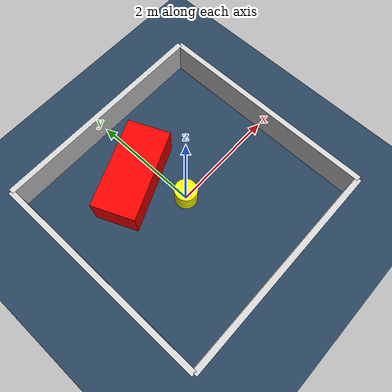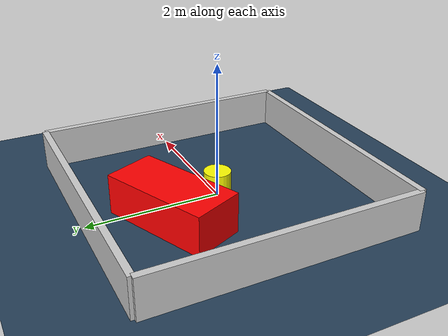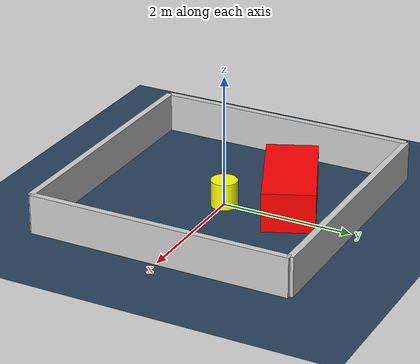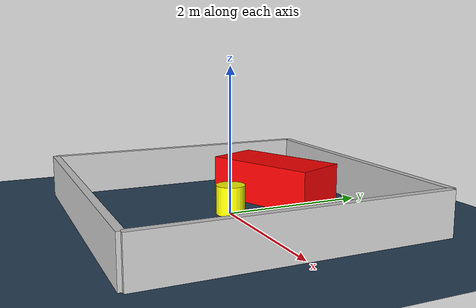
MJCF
<?xml version="1.0" ?>
<mujoco model="generated_environment">
  <option timestep="0.01" integrator="RK4" cone="elliptic"/>
  <default>
    <geom density="1"/>
  </default>
  <asset>
    <texture builtin="gradient" height="3072" rgb1="0.3 0.5 0.7" rgb2="0 0 0" type="skybox" width="512"/>
    <texture builtin="checker" height="300" mark="edge" markrgb="0.8 0.8 0.8" name="groundplane" rgb1="0.2 0.3 0.4" rgb2="0.1 0.2 0.3" type="2d" width="300"/>
    <material name="groundplane" reflectance="0.2" texrepeat="5 5" texture="groundplane" texuniform="true"/>
    <material name="robot" rgba="1.0 1.0 0.0 1.0"/>
  </asset>
  <worldbody>
    <light dir="0 0 -1" directional="true" pos="0 0 1.5"/>
    <geom condim="4" friction="1.0 0.005 0.001" material="groundplane" name="floor" size="0 0 0.05" type="plane"/>
    <body name="walls">
      <geom name="wall_1" condim="4" pos="-2.0 0.0 0.3" rgba="0.800000011920929 0.800000011920929 0.800000011920929 1.0" size="0.05 2.0 0.3" type="box"/>
      <geom name="wall_2" condim="4" pos="2.0 0.0 0.3" rgba="0.800000011920929 0.800000011920929 0.800000011920929 1.0" size="0.05 2.0 0.3" type="box"/>
      <geom name="wall_3" condim="4" pos="0.0 -2.0 0.3" rgba="0.800000011920929 0.800000011920929 0.800000011920929 1.0" size="2.0 0.05 0.3" type="box"/>
      <geom name="wall_4" condim="4" pos="0.0 2.0 0.3" rgba="0.800000011920929 0.800000011920929 0.800000011920929 1.0" size="2.0 0.05 0.3" type="box"/>
    </body>
    <body name="robot">
      <joint name="joint_x" type="slide" pos="0 0 0" axis="1 0 0"/>
      <joint name="joint_y" type="slide" pos="0 0 0" axis="0 1 0"/>
      <geom name="robot" type="cylinder" pos="0.0 0.0 0.2" size="0.2 0.2 0.0" mass="5.0" friction="1.0 0.005 0.0001" condim="4" rgba="1.0 1.0 0.0 1.0"/>
      <site name="sensor_ball"/>
    </body>
    <body name="obstacle_1_static">
      <geom name="obstacle_1_static" condim="4" pos="-0.38694514019838944 0.8721870634138447 0.3" euler="0 0 203.51768508522653" friction="1.0 0.005 0.001" rgba="1 0 0 1" size="0.8291155397036039 0.3881585788595999 0.3" type="box"/>
    </body>
  </worldbody>
  <actuator>
    <motor name="actuator_x" joint="joint_x" gear="1" ctrlrange="-1 1"/>
    <motor name="actuator_y" joint="joint_y" gear="1" ctrlrange="-1 1"/>
  </actuator>
</mujoco>
